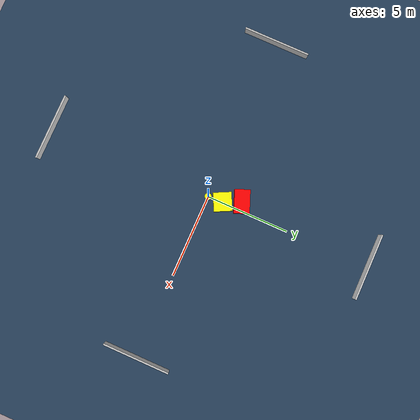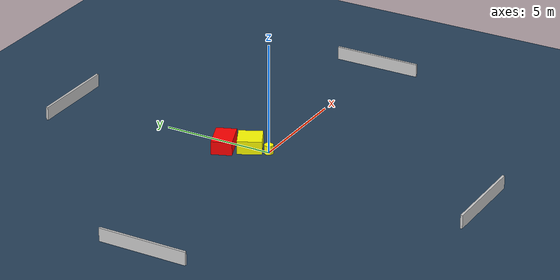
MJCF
<?xml version="1.0" ?>
<mujoco model="generated_environment">
  <option timestep="0.01" integrator="RK4" cone="elliptic"/>
  <default>
    <geom density="1"/>
  </default>
  <asset>
    <texture builtin="gradient" height="3072" name="skybox" rgb1="0.3 0.5 0.7" rgb2="0 0 0" type="skybox" width="512"/>
    <texture builtin="checker" height="300" name="groundplane" rgb1="0.2 0.3 0.4" rgb2="0.1 0.2 0.3" type="2d" width="300"/>
    <material name="groundplane" reflectance="0.2" texrepeat="5 5" texture="groundplane"/>
  </asset>
  <worldbody>
    <light dir="0 0 -1" directional="true" pos="0 0 1.5"/>
    <geom condim="3" friction="0.5 0.005 0.001" material="groundplane" name="floor" pos="0 0 0" size="0 0 0.05" type="plane"/>
    <body name="walls">
      <geom name="wall_1" condim="4" pos="-10.0 0.0 0.3" rgba="0.800000011920929 0.800000011920929 0.800000011920929 1.0" size="0.05 2.0 0.3" type="box"/>
      <geom name="wall_2" condim="4" pos="10.0 0.0 0.3" rgba="0.800000011920929 0.800000011920929 0.800000011920929 1.0" size="0.05 2.0 0.3" type="box"/>
      <geom name="wall_3" condim="4" pos="0.0 -10.0 0.3" rgba="0.800000011920929 0.800000011920929 0.800000011920929 1.0" size="2.0 0.05 0.3" type="box"/>
      <geom name="wall_4" condim="4" pos="0.0 10.0 0.3" rgba="0.800000011920929 0.800000011920929 0.800000011920929 1.0" size="2.0 0.05 0.3" type="box"/>
    </body>
    <body name="robot">
      <joint name="joint_x" type="slide" pos="0 0 0" axis="1 0 0"/>
      <joint name="joint_y" type="slide" pos="0 0 0" axis="0 1 0"/>
      <geom name="robot" type="cylinder" pos="0.0 0.0 0.2" size="0.2 0.2 0.0" mass="5.0" friction="1.0 0.005 0.0001" condim="4" rgba="1.0 1.0 0.0 1.0"/>
    </body>
    <body name="obstacle_1_movable">
      <geom name="obstacle_1_movable" condim="4" pos="-0.041106055470686756 0.8920411341654919 0.3" euler="0 0 296.6654385166859" friction="0.0 0.005 0.001" rgba="1.0 1.0 0.0 1.0" size="0.5357451967053021 0.5471661341201974 0.3" type="box" mass="0.1"/>
      <joint type="free"/>
    </body>
    <body name="obstacle_2_static">
      <geom name="obstacle_2_static" condim="4" pos="-0.5126179079125339 1.9070077801745535 0.3" euler="0 0 291.3755705001456" friction="0.0 0.005 0.001" rgba="1.0 0.0 0.0 1.0" size="0.45375234813297194 0.6951651512793353 0.3" type="box"/>
    </body>
  </worldbody>
  <actuator>
    <motor name="actuator_x" joint="joint_x" gear="1" ctrlrange="-1 1"/>
    <motor name="actuator_y" joint="joint_y" gear="1" ctrlrange="-1 1"/>
  </actuator>
</mujoco>
